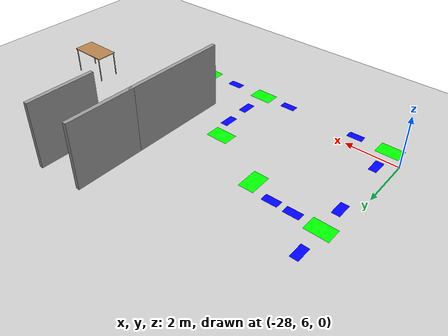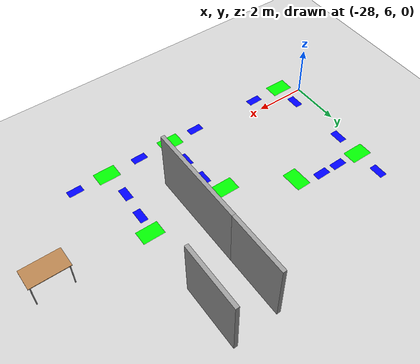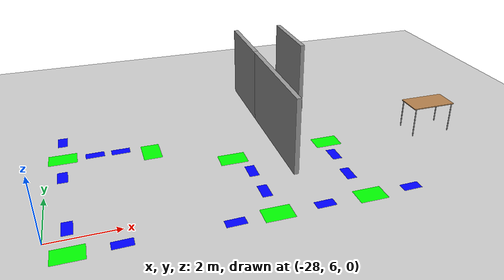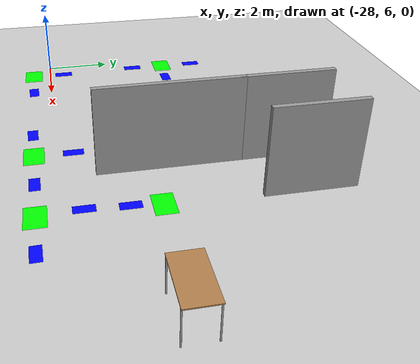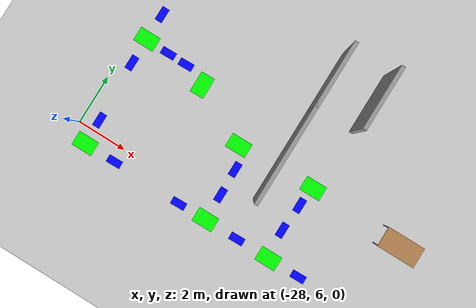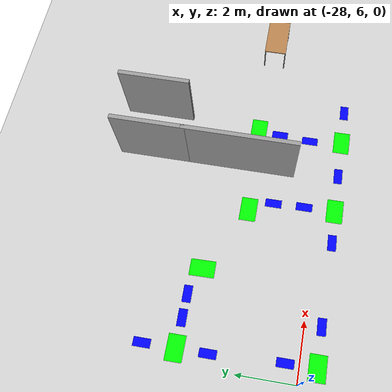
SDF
<sdf version="1.6">
 <world name="default">
  <model name="ground_plane">
   <pose>0 0 0.001 0 -0 0</pose>
   <static>1</static>
   <link name="link">
    <collision name="collision">
     <geometry><plane><normal>0 0 1</normal><size>100 100</size></plane></geometry>
     <surface><friction><ode><mu>100</mu><mu2>50</mu2></ode></friction></surface>
    </collision>
    <visual name="visual">
     <cast_shadows>0</cast_shadows>
     <geometry><plane><normal>0 0 1</normal><size>100 100</size></plane></geometry>
     <material>
      <script><uri>file://media/materials/scripts/gazebo.material</uri><name>Gazebo/Grey</name></script>
     </material>
    </visual>
   </link>
  </model>
  <model name="table_2">
   <static>1</static>
   <link name="link">
    <collision name="surface">
     <pose>0 0 1 0 -0 0</pose>
     <geometry><box><size>1.5 0.8 0.03</size></box></geometry>
     <surface><friction><ode><mu>0.6</mu><mu2>0.6</mu2></ode></friction></surface>
    </collision>
    <visual name="visual1">
     <pose>0 0 1 0 -0 0</pose>
     <geometry><box><size>1.5 0.8 0.03</size></box></geometry>
     <material>
      <script><uri>file://media/materials/scripts/gazebo.material</uri><name>Gazebo/Wood</name></script>
     </material>
    </visual>
    <collision name="front_left_leg">
     <pose>0.68 0.38 0.5 0 -0 0</pose>
     <geometry><cylinder><radius>0.02</radius><length>1</length></cylinder></geometry>
    </collision>
    <visual name="front_left_leg">
     <pose>0.68 0.38 0.5 0 -0 0</pose>
     <geometry><cylinder><radius>0.02</radius><length>1</length></cylinder></geometry>
     <material>
      <script><uri>file://media/materials/scripts/gazebo.material</uri><name>Gazebo/Grey</name></script>
     </material>
    </visual>
    <collision name="front_right_leg">
     <pose>0.68 -0.38 0.5 0 -0 0</pose>
     <geometry><cylinder><radius>0.02</radius><length>1</length></cylinder></geometry>
    </collision>
    <visual name="front_right_leg">
     <pose>0.68 -0.38 0.5 0 -0 0</pose>
     <geometry><cylinder><radius>0.02</radius><length>1</length></cylinder></geometry>
     <material>
      <script><uri>file://media/materials/scripts/gazebo.material</uri><name>Gazebo/Grey</name></script>
     </material>
    </visual>
    <collision name="back_right_leg">
     <pose>-0.68 -0.38 0.5 0 -0 0</pose>
     <geometry><cylinder><radius>0.02</radius><length>1</length></cylinder></geometry>
    </collision>
    <visual name="back_right_leg">
     <pose>-0.68 -0.38 0.5 0 -0 0</pose>
     <geometry><cylinder><radius>0.02</radius><length>1</length></cylinder></geometry>
     <material>
      <script><uri>file://media/materials/scripts/gazebo.material</uri><name>Gazebo/Grey</name></script>
     </material>
    </visual>
    <collision name="back_left_leg">
     <pose>-0.68 0.38 0.5 0 -0 0</pose>
     <geometry><cylinder><radius>0.02</radius><length>1</length></cylinder></geometry>
    </collision>
    <visual name="back_left_leg">
     <pose>-0.68 0.38 0.5 0 -0 0</pose>
     <geometry><cylinder><radius>0.02</radius><length>1</length></cylinder></geometry>
     <material>
      <script><uri>file://media/materials/scripts/gazebo.material</uri><name>Gazebo/Grey</name></script>
     </material>
    </visual>
   </link>
   <pose>-15.5399 8.3596 0.001 0 -0 0</pose>
  </model>
  <model name="corridor_1">
   <link name="link">
    <pose>0 0 0.001 0 -0 0</pose>
    <inertial>
     <mass>0.0352517</mass>
     <inertia>
      <ixx>0.00099707</ixx>
      <ixy>0</ixy>
      <ixz>0</ixz>
      <iyy>0.00220147</iyy>
      <iyz>0</iyz>
      <izz>0.0031692</izz>
     </inertia>
     <pose>0 0 0.001 0 -0 0</pose>
    </inertial>
    <visual name="visual">
     <geometry><box><size>0.862743 0.578289 1e-06</size></box></geometry>
     <material>
      <script><name>Gazebo/Grey</name><uri>file://media/materials/scripts/gazebo.material</uri></script>
      <ambient>0 1 0 1</ambient>
      <diffuse>0 1 0 1</diffuse>
      <specular>0 1 0 1</specular>
      <emissive>0 1 0 1</emissive>
      <shader type="vertex"><normal_map>__default__</normal_map></shader>
     </material>
     <pose>0 0 0.001 0 -0 0</pose>
    </visual>
    <collision name="collision">
     <pose>0 0 0.001 0 -0 0</pose>
     <geometry><box><size>0.862743 0.578289 0.000477</size></box></geometry>
     <surface>
      <friction>
       <ode><mu>1</mu><mu2>1</mu2><fdir1>0 0 0</fdir1><slip1>0</slip1><slip2>0</slip2></ode>
       <torsional>
        <coefficient>1</coefficient>
        <patch_radius>0</patch_radius>
        <surface_radius>0</surface_radius>
        <use_patch_radius>1</use_patch_radius>
        <ode><slip>0</slip></ode>
       </torsional>
      </friction>
      <bounce><restitution_coefficient>0</restitution_coefficient><threshold>1e+06</threshold></bounce>
      <contact>
       <collide_without_contact>0</collide_without_contact>
       <collide_without_contact_bitmask>1</collide_without_contact_bitmask>
       <collide_bitmask>1</collide_bitmask>
       <ode>
        <soft_cfm>0</soft_cfm>
        <soft_erp>0.2</soft_erp>
        <kp>1e+13</kp>
        <kd>1</kd>
        <max_vel>0.01</max_vel>
        <min_depth>0</min_depth>
       </ode>
       <bullet>
        <split_impulse>1</split_impulse>
        <split_impulse_penetration_threshold>-0.01</split_impulse_penetration_threshold>
        <soft_cfm>0</soft_cfm>
        <soft_erp>0.2</soft_erp>
        <kp>1e+13</kp>
        <kd>1</kd>
       </bullet>
      </contact>
     </surface>
    </collision>
   </link>
   <static>1</static>
   <pose>-27.5054 9.99894 0 0 -0 0</pose>
  </model>
  <model name="corridor_2">
   <link name="link">
    <pose>0 0 0.001 0 -0 0</pose>
    <inertial>
     <mass>0.0352517</mass>
     <inertia>
      <ixx>0.00099707</ixx>
      <ixy>0</ixy>
      <ixz>0</ixz>
      <iyy>0.00220147</iyy>
      <iyz>0</iyz>
      <izz>0.0031692</izz>
     </inertia>
     <pose>0 0 0.001 0 -0 0</pose>
    </inertial>
    <visual name="visual">
     <geometry><box><size>0.862743 0.578289 1e-06</size></box></geometry>
     <material>
      <script><name>Gazebo/Grey</name><uri>file://media/materials/scripts/gazebo.material</uri></script>
      <ambient>0 1 0 1</ambient>
      <diffuse>0 1 0 1</diffuse>
      <specular>0 1 0 1</specular>
      <emissive>0 1 0 1</emissive>
      <shader type="vertex"><normal_map>__default__</normal_map></shader>
     </material>
     <pose>0 0 0.001 0 -0 0</pose>
    </visual>
    <collision name="collision">
     <pose>0 0 0.001 0 -0 0</pose>
     <geometry><box><size>0.862743 0.578289 0.000477</size></box></geometry>
     <surface>
      <friction>
       <ode><mu>1</mu><mu2>1</mu2><fdir1>0 0 0</fdir1><slip1>0</slip1><slip2>0</slip2></ode>
       <torsional>
        <coefficient>1</coefficient>
        <patch_radius>0</patch_radius>
        <surface_radius>0</surface_radius>
        <use_patch_radius>1</use_patch_radius>
        <ode><slip>0</slip></ode>
       </torsional>
      </friction>
      <bounce><restitution_coefficient>0</restitution_coefficient><threshold>1e+06</threshold></bounce>
      <contact>
       <collide_without_contact>0</collide_without_contact>
       <collide_without_contact_bitmask>1</collide_without_contact_bitmask>
       <collide_bitmask>1</collide_bitmask>
       <ode>
        <soft_cfm>0</soft_cfm>
        <soft_erp>0.2</soft_erp>
        <kp>1e+13</kp>
        <kd>1</kd>
        <max_vel>0.01</max_vel>
        <min_depth>0</min_depth>
       </ode>
       <bullet>
        <split_impulse>1</split_impulse>
        <split_impulse_penetration_threshold>-0.01</split_impulse_penetration_threshold>
        <soft_cfm>0</soft_cfm>
        <soft_erp>0.2</soft_erp>
        <kp>1e+13</kp>
        <kd>1</kd>
       </bullet>
      </contact>
     </surface>
    </collision>
   </link>
   <static>1</static>
   <pose>-27.3839 5.42148 0 0 -0 0</pose>
  </model>
  <model name="corridor_20">
   <link name="link">
    <pose>0 0 0.001 0 -0 0</pose>
    <inertial>
     <mass>0.0352517</mass>
     <inertia>
      <ixx>0.00099707</ixx>
      <ixy>0</ixy>
      <ixz>0</ixz>
      <iyy>0.00220147</iyy>
      <iyz>0</iyz>
      <izz>0.0031692</izz>
     </inertia>
     <pose>0 0 0.001 0 -0 0</pose>
    </inertial>
    <visual name="visual">
     <geometry><box><size>0.862743 0.578289 1e-06</size></box></geometry>
     <material>
      <script><name>Gazebo/Grey</name><uri>file://media/materials/scripts/gazebo.material</uri></script>
      <ambient>0 1 0 1</ambient>
      <diffuse>0 1 0 1</diffuse>
      <specular>0 1 0 1</specular>
      <emissive>0 1 0 1</emissive>
      <shader type="vertex"><normal_map>__default__</normal_map></shader>
     </material>
     <pose>0 0 0.001 0 -0 0</pose>
    </visual>
    <collision name="collision">
     <pose>0 0 0.001 0 -0 0</pose>
     <geometry><box><size>0.862743 0.578289 0.000477</size></box></geometry>
     <surface>
      <friction>
       <ode><mu>1</mu><mu2>1</mu2><fdir1>0 0 0</fdir1><slip1>0</slip1><slip2>0</slip2></ode>
       <torsional>
        <coefficient>1</coefficient>
        <patch_radius>0</patch_radius>
        <surface_radius>0</surface_radius>
        <use_patch_radius>1</use_patch_radius>
        <ode><slip>0</slip></ode>
       </torsional>
      </friction>
      <bounce><restitution_coefficient>0</restitution_coefficient><threshold>1e+06</threshold></bounce>
      <contact>
       <collide_without_contact>0</collide_without_contact>
       <collide_without_contact_bitmask>1</collide_without_contact_bitmask>
       <collide_bitmask>1</collide_bitmask>
       <ode>
        <soft_cfm>0</soft_cfm>
        <soft_erp>0.2</soft_erp>
        <kp>1e+13</kp>
        <kd>1</kd>
        <max_vel>0.01</max_vel>
        <min_depth>0</min_depth>
       </ode>
       <bullet>
        <split_impulse>1</split_impulse>
        <split_impulse_penetration_threshold>-0.01</split_impulse_penetration_threshold>
        <soft_cfm>0</soft_cfm>
        <soft_erp>0.2</soft_erp>
        <kp>1e+13</kp>
        <kd>1</kd>
       </bullet>
      </contact>
     </surface>
    </collision>
   </link>
   <static>1</static>
   <pose>-19.241 5.38665 0 0 -0 0</pose>
  </model>
  <model name="corridor_21">
   <link name="link">
    <pose>0 0 0.001 0 -0 0</pose>
    <inertial>
     <mass>0.0352517</mass>
     <inertia>
      <ixx>0.00099707</ixx>
      <ixy>0</ixy>
      <ixz>0</ixz>
      <iyy>0.00220147</iyy>
      <iyz>0</iyz>
      <izz>0.0031692</izz>
     </inertia>
     <pose>0 0 0.001 0 -0 0</pose>
    </inertial>
    <visual name="visual">
     <geometry><box><size>0.862743 0.578289 1e-06</size></box></geometry>
     <material>
      <script><name>Gazebo/Grey</name><uri>file://media/materials/scripts/gazebo.material</uri></script>
      <ambient>0 1 0 1</ambient>
      <diffuse>0 1 0 1</diffuse>
      <specular>0 1 0 1</specular>
      <emissive>0 1 0 1</emissive>
      <shader type="vertex"><normal_map>__default__</normal_map></shader>
     </material>
     <pose>0 0 0.001 0 -0 0</pose>
    </visual>
    <collision name="collision">
     <pose>0 0 0.001 0 -0 0</pose>
     <geometry><box><size>0.862743 0.578289 0.000477</size></box></geometry>
     <surface>
      <friction>
       <ode><mu>1</mu><mu2>1</mu2><fdir1>0 0 0</fdir1><slip1>0</slip1><slip2>0</slip2></ode>
       <torsional>
        <coefficient>1</coefficient>
        <patch_radius>0</patch_radius>
        <surface_radius>0</surface_radius>
        <use_patch_radius>1</use_patch_radius>
        <ode><slip>0</slip></ode>
       </torsional>
      </friction>
      <bounce><restitution_coefficient>0</restitution_coefficient><threshold>1e+06</threshold></bounce>
      <contact>
       <collide_without_contact>0</collide_without_contact>
       <collide_without_contact_bitmask>1</collide_without_contact_bitmask>
       <collide_bitmask>1</collide_bitmask>
       <ode>
        <soft_cfm>0</soft_cfm>
        <soft_erp>0.2</soft_erp>
        <kp>1e+13</kp>
        <kd>1</kd>
        <max_vel>0.01</max_vel>
        <min_depth>0</min_depth>
       </ode>
       <bullet>
        <split_impulse>1</split_impulse>
        <split_impulse_penetration_threshold>-0.01</split_impulse_penetration_threshold>
        <soft_cfm>0</soft_cfm>
        <soft_erp>0.2</soft_erp>
        <kp>1e+13</kp>
        <kd>1</kd>
       </bullet>
      </contact>
     </surface>
    </collision>
   </link>
   <static>1</static>
   <pose>-22.0183 5.38077 0 0 -0 0</pose>
  </model>
  <model name="Se1_cut">
   <pose>3.62364 13.9276 0 0 -0 0</pose>
   <link name="Wall_20">
    <collision name="Wall_20_Collision">
     <geometry><box><size>2.57604 0.15 2.5</size></box></geometry>
     <pose>0 0 1.25 0 -0 0</pose>
    </collision>
    <visual name="Wall_20_Visual">
     <pose>0 0 1.25 0 -0 0</pose>
     <geometry><box><size>2.57604 0.15 2.5</size></box></geometry>
     <material>
      <script><uri>file://media/materials/scripts/gazebo.material</uri><name>Gazebo/Grey</name></script>
      <ambient>1 1 1 1</ambient>
     </material>
    </visual>
    <pose>-24.4704 -1.79415 0 0 0 -1.5708</pose>
   </link>
   <link name="Wall_23">
    <collision name="Wall_23_Collision">
     <geometry><box><size>2.5 0.15 2.5</size></box></geometry>
     <pose>0 0 1.25 0 -0 0</pose>
    </collision>
    <visual name="Wall_23_Visual">
     <pose>0 0 1.25 0 -0 0</pose>
     <geometry><box><size>2.5 0.15 2.5</size></box></geometry>
     <material>
      <script><uri>file://media/materials/scripts/gazebo.material</uri><name>Gazebo/Grey</name></script>
      <ambient>1 1 1 1</ambient>
     </material>
    </visual>
    <pose>-22.711 -1.63352 0 0 0 -1.5708</pose>
   </link>
   <link name="Wall_87">
    <collision name="Wall_87_Collision">
     <geometry><box><size>4 0.15 2.5</size></box></geometry>
     <pose>0 0 1.25 0 -0 0</pose>
    </collision>
    <visual name="Wall_87_Visual">
     <pose>0 0 1.25 0 -0 0</pose>
     <geometry><box><size>4 0.15 2.5</size></box></geometry>
     <material>
      <script><uri>file://media/materials/scripts/gazebo.material</uri><name>Gazebo/Grey</name></script>
      <ambient>1 1 1 1</ambient>
     </material>
    </visual>
    <pose>-24.4704 -4.93217 0 0 0 -1.5708</pose>
   </link>
   <static>1</static>
  </model>
  <model name="intersectionXS_2">
   <link name="link">
    <pose>0 0 0.001 0 -0 0</pose>
    <inertial>
     <mass>0.0122177</mass>
     <inertia>
      <ixx>0.000345567</ixx>
      <ixy>0</ixy>
      <ixz>0</ixz>
      <iyy>9.61239e-05</iyy>
      <iyz>0</iyz>
      <izz>0.000431523</izz>
     </inertia>
    </inertial>
    <visual name="visual">
     <geometry><box><size>0.299013 0.578289 1e-06</size></box></geometry>
     <material>
      <script><name>Gazebo/Grey</name><uri>file://media/materials/scripts/gazebo.material</uri></script>
      <ambient>0 0 1 1</ambient>
      <diffuse>0 0 1 1</diffuse>
      <specular>0 0 1 1</specular>
      <emissive>0 0 1 1</emissive>
      <shader type="vertex"><normal_map>__default__</normal_map></shader>
     </material>
     <pose>0 0 0.001 0 -0 0</pose>
    </visual>
    <collision name="collision">
     <pose>0 0 0.001 0 -0 0</pose>
     <geometry><box><size>0.299013 0.578289 0.000477</size></box></geometry>
     <surface>
      <friction>
       <ode><mu>1</mu><mu2>1</mu2><fdir1>0 0 0</fdir1><slip1>0</slip1><slip2>0</slip2></ode>
       <torsional>
        <coefficient>1</coefficient>
        <patch_radius>0</patch_radius>
        <surface_radius>0</surface_radius>
        <use_patch_radius>1</use_patch_radius>
        <ode><slip>0</slip></ode>
       </torsional>
      </friction>
      <bounce><restitution_coefficient>0</restitution_coefficient><threshold>1e+06</threshold></bounce>
      <contact>
       <collide_without_contact>0</collide_without_contact>
       <collide_without_contact_bitmask>1</collide_without_contact_bitmask>
       <collide_bitmask>1</collide_bitmask>
       <ode>
        <soft_cfm>0</soft_cfm>
        <soft_erp>0.2</soft_erp>
        <kp>1e+13</kp>
        <kd>1</kd>
        <max_vel>0.01</max_vel>
        <min_depth>0</min_depth>
       </ode>
       <bullet>
        <split_impulse>1</split_impulse>
        <split_impulse_penetration_threshold>-0.01</split_impulse_penetration_threshold>
        <soft_cfm>0</soft_cfm>
        <soft_erp>0.2</soft_erp>
        <kp>1e+13</kp>
        <kd>1</kd>
       </bullet>
      </contact>
     </surface>
    </collision>
   </link>
   <static>1</static>
   <pose>-27.5116 11.099 0 0 -0 0</pose>
  </model>
  <model name="intersectionXS_3">
   <link name="link">
    <pose>0 0 0.001 0 -0 0</pose>
    <inertial>
     <mass>0.0122177</mass>
     <inertia>
      <ixx>0.000345567</ixx>
      <ixy>0</ixy>
      <ixz>0</ixz>
      <iyy>9.61239e-05</iyy>
      <iyz>0</iyz>
      <izz>0.000431523</izz>
     </inertia>
    </inertial>
    <visual name="visual">
     <geometry><box><size>0.299013 0.578289 1e-06</size></box></geometry>
     <material>
      <script><name>Gazebo/Grey</name><uri>file://media/materials/scripts/gazebo.material</uri></script>
      <ambient>0 0 1 1</ambient>
      <diffuse>0 0 1 1</diffuse>
      <specular>0 0 1 1</specular>
      <emissive>0 0 1 1</emissive>
      <shader type="vertex"><normal_map>__default__</normal_map></shader>
     </material>
     <pose>0 0 0.001 0 -0 0</pose>
    </visual>
    <collision name="collision">
     <pose>0 0 0.001 0 -0 0</pose>
     <geometry><box><size>0.299013 0.578289 0.000477</size></box></geometry>
     <surface>
      <friction>
       <ode><mu>1</mu><mu2>1</mu2><fdir1>0 0 0</fdir1><slip1>0</slip1><slip2>0</slip2></ode>
       <torsional>
        <coefficient>1</coefficient>
        <patch_radius>0</patch_radius>
        <surface_radius>0</surface_radius>
        <use_patch_radius>1</use_patch_radius>
        <ode><slip>0</slip></ode>
       </torsional>
      </friction>
      <bounce><restitution_coefficient>0</restitution_coefficient><threshold>1e+06</threshold></bounce>
      <contact>
       <collide_without_contact>0</collide_without_contact>
       <collide_without_contact_bitmask>1</collide_without_contact_bitmask>
       <collide_bitmask>1</collide_bitmask>
       <ode>
        <soft_cfm>0</soft_cfm>
        <soft_erp>0.2</soft_erp>
        <kp>1e+13</kp>
        <kd>1</kd>
        <max_vel>0.01</max_vel>
        <min_depth>0</min_depth>
       </ode>
       <bullet>
        <split_impulse>1</split_impulse>
        <split_impulse_penetration_threshold>-0.01</split_impulse_penetration_threshold>
        <soft_cfm>0</soft_cfm>
        <soft_erp>0.2</soft_erp>
        <kp>1e+13</kp>
        <kd>1</kd>
       </bullet>
      </contact>
     </surface>
    </collision>
   </link>
   <static>1</static>
   <pose>-27.511 8.93568 0 0 -0 0</pose>
  </model>
  <model name="intersectionXS_4">
   <link name="link">
    <pose>0 0 0.001 0 -0 0</pose>
    <inertial>
     <mass>0.0122177</mass>
     <inertia>
      <ixx>0.000345567</ixx>
      <ixy>0</ixy>
      <ixz>0</ixz>
      <iyy>9.61239e-05</iyy>
      <iyz>0</iyz>
      <izz>0.000431523</izz>
     </inertia>
    </inertial>
    <visual name="visual">
     <geometry><box><size>0.299013 0.578289 1e-06</size></box></geometry>
     <material>
      <script><name>Gazebo/Grey</name><uri>file://media/materials/scripts/gazebo.material</uri></script>
      <ambient>0 0 1 1</ambient>
      <diffuse>0 0 1 1</diffuse>
      <specular>0 0 1 1</specular>
      <emissive>0 0 1 1</emissive>
      <shader type="vertex"><normal_map>__default__</normal_map></shader>
     </material>
     <pose>0 0 0.001 0 -0 0</pose>
    </visual>
    <collision name="collision">
     <pose>0 0 0.001 0 -0 0</pose>
     <geometry><box><size>0.299013 0.578289 0.000477</size></box></geometry>
     <surface>
      <friction>
       <ode><mu>1</mu><mu2>1</mu2><fdir1>0 0 0</fdir1><slip1>0</slip1><slip2>0</slip2></ode>
       <torsional>
        <coefficient>1</coefficient>
        <patch_radius>0</patch_radius>
        <surface_radius>0</surface_radius>
        <use_patch_radius>1</use_patch_radius>
        <ode><slip>0</slip></ode>
       </torsional>
      </friction>
      <bounce><restitution_coefficient>0</restitution_coefficient><threshold>1e+06</threshold></bounce>
      <contact>
       <collide_without_contact>0</collide_without_contact>
       <collide_without_contact_bitmask>1</collide_without_contact_bitmask>
       <collide_bitmask>1</collide_bitmask>
       <ode>
        <soft_cfm>0</soft_cfm>
        <soft_erp>0.2</soft_erp>
        <kp>1e+13</kp>
        <kd>1</kd>
        <max_vel>0.01</max_vel>
        <min_depth>0</min_depth>
       </ode>
       <bullet>
        <split_impulse>1</split_impulse>
        <split_impulse_penetration_threshold>-0.01</split_impulse_penetration_threshold>
        <soft_cfm>0</soft_cfm>
        <soft_erp>0.2</soft_erp>
        <kp>1e+13</kp>
        <kd>1</kd>
       </bullet>
      </contact>
     </surface>
    </collision>
   </link>
   <static>1</static>
   <pose>-27.3955 6.45309 0 0 -0 0</pose>
  </model>
  <model name="intersectionXS_9">
   <link name="link">
    <pose>0 0 0.001 0 -0 0</pose>
    <inertial>
     <mass>0.0122177</mass>
     <inertia>
      <ixx>0.000345567</ixx>
      <ixy>0</ixy>
      <ixz>0</ixz>
      <iyy>9.61239e-05</iyy>
      <iyz>0</iyz>
      <izz>0.000431523</izz>
     </inertia>
    </inertial>
    <visual name="visual">
     <geometry><box><size>0.299013 0.578289 1e-06</size></box></geometry>
     <material>
      <script><name>Gazebo/Grey</name><uri>file://media/materials/scripts/gazebo.material</uri></script>
      <ambient>0 0 1 1</ambient>
      <diffuse>0 0 1 1</diffuse>
      <specular>0 0 1 1</specular>
      <emissive>0 0 1 1</emissive>
      <shader type="vertex"><normal_map>__default__</normal_map></shader>
     </material>
     <pose>0 0 0.001 0 -0 0</pose>
    </visual>
    <collision name="collision">
     <pose>0 0 0.001 0 -0 0</pose>
     <geometry><box><size>0.299013 0.578289 0.000477</size></box></geometry>
     <surface>
      <friction>
       <ode><mu>1</mu><mu2>1</mu2><fdir1>0 0 0</fdir1><slip1>0</slip1><slip2>0</slip2></ode>
       <torsional>
        <coefficient>1</coefficient>
        <patch_radius>0</patch_radius>
        <surface_radius>0</surface_radius>
        <use_patch_radius>1</use_patch_radius>
        <ode><slip>0</slip></ode>
       </torsional>
      </friction>
      <bounce><restitution_coefficient>0</restitution_coefficient><threshold>1e+06</threshold></bounce>
      <contact>
       <collide_without_contact>0</collide_without_contact>
       <collide_without_contact_bitmask>1</collide_without_contact_bitmask>
       <collide_bitmask>1</collide_bitmask>
       <ode>
        <soft_cfm>0</soft_cfm>
        <soft_erp>0.2</soft_erp>
        <kp>1e+13</kp>
        <kd>1</kd>
        <max_vel>0.01</max_vel>
        <min_depth>0</min_depth>
       </ode>
       <bullet>
        <split_impulse>1</split_impulse>
        <split_impulse_penetration_threshold>-0.01</split_impulse_penetration_threshold>
        <soft_cfm>0</soft_cfm>
        <soft_erp>0.2</soft_erp>
        <kp>1e+13</kp>
        <kd>1</kd>
       </bullet>
      </contact>
     </surface>
    </collision>
   </link>
   <static>1</static>
   <pose>-22.0236 6.47064 0 0 -0 0</pose>
  </model>
  <model name="intersectionXS_10">
   <link name="link">
    <pose>0 0 0.001 0 -0 0</pose>
    <inertial>
     <mass>0.0122177</mass>
     <inertia>
      <ixx>0.000345567</ixx>
      <ixy>0</ixy>
      <ixz>0</ixz>
      <iyy>9.61239e-05</iyy>
      <iyz>0</iyz>
      <izz>0.000431523</izz>
     </inertia>
    </inertial>
    <visual name="visual">
     <geometry><box><size>0.299013 0.578289 1e-06</size></box></geometry>
     <material>
      <script><name>Gazebo/Grey</name><uri>file://media/materials/scripts/gazebo.material</uri></script>
      <ambient>0 0 1 1</ambient>
      <diffuse>0 0 1 1</diffuse>
      <specular>0 0 1 1</specular>
      <emissive>0 0 1 1</emissive>
      <shader type="vertex"><normal_map>__default__</normal_map></shader>
     </material>
     <pose>0 0 0.001 0 -0 0</pose>
    </visual>
    <collision name="collision">
     <pose>0 0 0.001 0 -0 0</pose>
     <geometry><box><size>0.299013 0.578289 0.000477</size></box></geometry>
     <surface>
      <friction>
       <ode><mu>1</mu><mu2>1</mu2><fdir1>0 0 0</fdir1><slip1>0</slip1><slip2>0</slip2></ode>
       <torsional>
        <coefficient>1</coefficient>
        <patch_radius>0</patch_radius>
        <surface_radius>0</surface_radius>
        <use_patch_radius>1</use_patch_radius>
        <ode><slip>0</slip></ode>
       </torsional>
      </friction>
      <bounce><restitution_coefficient>0</restitution_coefficient><threshold>1e+06</threshold></bounce>
      <contact>
       <collide_without_contact>0</collide_without_contact>
       <collide_without_contact_bitmask>1</collide_without_contact_bitmask>
       <collide_bitmask>1</collide_bitmask>
       <ode>
        <soft_cfm>0</soft_cfm>
        <soft_erp>0.2</soft_erp>
        <kp>1e+13</kp>
        <kd>1</kd>
        <max_vel>0.01</max_vel>
        <min_depth>0</min_depth>
       </ode>
       <bullet>
        <split_impulse>1</split_impulse>
        <split_impulse_penetration_threshold>-0.01</split_impulse_penetration_threshold>
        <soft_cfm>0</soft_cfm>
        <soft_erp>0.2</soft_erp>
        <kp>1e+13</kp>
        <kd>1</kd>
       </bullet>
      </contact>
     </surface>
    </collision>
   </link>
   <static>1</static>
   <pose>-22.0603 7.56999 0 0 -0 0</pose>
  </model>
  <model name="intersectionXS_11">
   <link name="link">
    <pose>0 0 0.001 0 -0 0</pose>
    <inertial>
     <mass>0.0122177</mass>
     <inertia>
      <ixx>0.000345567</ixx>
      <ixy>0</ixy>
      <ixz>0</ixz>
      <iyy>9.61239e-05</iyy>
      <iyz>0</iyz>
      <izz>0.000431523</izz>
     </inertia>
    </inertial>
    <visual name="visual">
     <geometry><box><size>0.299013 0.578289 1e-06</size></box></geometry>
     <material>
      <script><name>Gazebo/Grey</name><uri>file://media/materials/scripts/gazebo.material</uri></script>
      <ambient>0 0 1 1</ambient>
      <diffuse>0 0 1 1</diffuse>
      <specular>0 0 1 1</specular>
      <emissive>0 0 1 1</emissive>
      <shader type="vertex"><normal_map>__default__</normal_map></shader>
     </material>
     <pose>0 0 0.001 0 -0 0</pose>
    </visual>
    <collision name="collision">
     <pose>0 0 0.001 0 -0 0</pose>
     <geometry><box><size>0.299013 0.578289 0.000477</size></box></geometry>
     <surface>
      <friction>
       <ode><mu>1</mu><mu2>1</mu2><fdir1>0 0 0</fdir1><slip1>0</slip1><slip2>0</slip2></ode>
       <torsional>
        <coefficient>1</coefficient>
        <patch_radius>0</patch_radius>
        <surface_radius>0</surface_radius>
        <use_patch_radius>1</use_patch_radius>
        <ode><slip>0</slip></ode>
       </torsional>
      </friction>
      <bounce><restitution_coefficient>0</restitution_coefficient><threshold>1e+06</threshold></bounce>
      <contact>
       <collide_without_contact>0</collide_without_contact>
       <collide_without_contact_bitmask>1</collide_without_contact_bitmask>
       <collide_bitmask>1</collide_bitmask>
       <ode>
        <soft_cfm>0</soft_cfm>
        <soft_erp>0.2</soft_erp>
        <kp>1e+13</kp>
        <kd>1</kd>
        <max_vel>0.01</max_vel>
        <min_depth>0</min_depth>
       </ode>
       <bullet>
        <split_impulse>1</split_impulse>
        <split_impulse_penetration_threshold>-0.01</split_impulse_penetration_threshold>
        <soft_cfm>0</soft_cfm>
        <soft_erp>0.2</soft_erp>
        <kp>1e+13</kp>
        <kd>1</kd>
       </bullet>
      </contact>
     </surface>
    </collision>
   </link>
   <static>1</static>
   <pose>-19.3524 6.56449 0 0 -0 0</pose>
  </model>
  <model name="intersectionXS_12">
   <link name="link">
    <pose>0 0 0.001 0 -0 0</pose>
    <inertial>
     <mass>0.0122177</mass>
     <inertia>
      <ixx>0.000345567</ixx>
      <ixy>0</ixy>
      <ixz>0</ixz>
      <iyy>9.61239e-05</iyy>
      <iyz>0</iyz>
      <izz>0.000431523</izz>
     </inertia>
    </inertial>
    <visual name="visual">
     <geometry><box><size>0.299013 0.578289 1e-06</size></box></geometry>
     <material>
      <script><name>Gazebo/Grey</name><uri>file://media/materials/scripts/gazebo.material</uri></script>
      <ambient>0 0 1 1</ambient>
      <diffuse>0 0 1 1</diffuse>
      <specular>0 0 1 1</specular>
      <emissive>0 0 1 1</emissive>
      <shader type="vertex"><normal_map>__default__</normal_map></shader>
     </material>
     <pose>0 0 0.001 0 -0 0</pose>
    </visual>
    <collision name="collision">
     <pose>0 0 0.001 0 -0 0</pose>
     <geometry><box><size>0.299013 0.578289 0.000477</size></box></geometry>
     <surface>
      <friction>
       <ode><mu>1</mu><mu2>1</mu2><fdir1>0 0 0</fdir1><slip1>0</slip1><slip2>0</slip2></ode>
       <torsional>
        <coefficient>1</coefficient>
        <patch_radius>0</patch_radius>
        <surface_radius>0</surface_radius>
        <use_patch_radius>1</use_patch_radius>
        <ode><slip>0</slip></ode>
       </torsional>
      </friction>
      <bounce><restitution_coefficient>0</restitution_coefficient><threshold>1e+06</threshold></bounce>
      <contact>
       <collide_without_contact>0</collide_without_contact>
       <collide_without_contact_bitmask>1</collide_without_contact_bitmask>
       <collide_bitmask>1</collide_bitmask>
       <ode>
        <soft_cfm>0</soft_cfm>
        <soft_erp>0.2</soft_erp>
        <kp>1e+13</kp>
        <kd>1</kd>
        <max_vel>0.01</max_vel>
        <min_depth>0</min_depth>
       </ode>
       <bullet>
        <split_impulse>1</split_impulse>
        <split_impulse_penetration_threshold>-0.01</split_impulse_penetration_threshold>
        <soft_cfm>0</soft_cfm>
        <soft_erp>0.2</soft_erp>
        <kp>1e+13</kp>
        <kd>1</kd>
       </bullet>
      </contact>
     </surface>
    </collision>
   </link>
   <static>1</static>
   <pose>-19.2833 7.70222 0 0 -0 0</pose>
  </model>
  <model name="intersectionXS_15_clone_1">
   <link name="link">
    <pose>0 0 0.001 0 -0 0</pose>
    <inertial>
     <mass>0.0122177</mass>
     <inertia>
      <ixx>0.000345567</ixx>
      <ixy>0</ixy>
      <ixz>0</ixz>
      <iyy>9.61239e-05</iyy>
      <iyz>0</iyz>
      <izz>0.000431523</izz>
     </inertia>
    </inertial>
    <visual name="visual">
     <geometry><box><size>0.299013 0.578289 1e-06</size></box></geometry>
     <material>
      <script><name>Gazebo/Grey</name><uri>file://media/materials/scripts/gazebo.material</uri></script>
      <ambient>0 0 1 1</ambient>
      <diffuse>0 0 1 1</diffuse>
      <specular>0 0 1 1</specular>
      <emissive>0 0 1 1</emissive>
      <shader type="vertex"><normal_map>__default__</normal_map></shader>
     </material>
     <pose>0 0 0.001 0 -0 0</pose>
    </visual>
    <collision name="collision">
     <pose>0 0 0.001 0 -0 0</pose>
     <geometry><box><size>0.299013 0.578289 0.000477</size></box></geometry>
     <surface>
      <friction>
       <ode><mu>1</mu><mu2>1</mu2><fdir1>0 0 0</fdir1><slip1>0</slip1><slip2>0</slip2></ode>
       <torsional>
        <coefficient>1</coefficient>
        <patch_radius>0</patch_radius>
        <surface_radius>0</surface_radius>
        <use_patch_radius>1</use_patch_radius>
        <ode><slip>0</slip></ode>
       </torsional>
      </friction>
      <bounce><restitution_coefficient>0</restitution_coefficient><threshold>1e+06</threshold></bounce>
      <contact>
       <collide_without_contact>0</collide_without_contact>
       <collide_without_contact_bitmask>1</collide_without_contact_bitmask>
       <collide_bitmask>1</collide_bitmask>
       <ode>
        <soft_cfm>0</soft_cfm>
        <soft_erp>0.2</soft_erp>
        <kp>1e+13</kp>
        <kd>1</kd>
        <max_vel>0.01</max_vel>
        <min_depth>0</min_depth>
       </ode>
       <bullet>
        <split_impulse>1</split_impulse>
        <split_impulse_penetration_threshold>-0.01</split_impulse_penetration_threshold>
        <soft_cfm>0</soft_cfm>
        <soft_erp>0.2</soft_erp>
        <kp>1e+13</kp>
        <kd>1</kd>
       </bullet>
      </contact>
     </surface>
    </collision>
   </link>
   <static>1</static>
   <pose>-26.5294 9.97118 0 0 -0 1.59325</pose>
  </model>
  <model name="intersectionXS_15_clone_2">
   <link name="link">
    <pose>0 0 0.001 0 -0 0</pose>
    <inertial>
     <mass>0.0122177</mass>
     <inertia>
      <ixx>0.000345567</ixx>
      <ixy>0</ixy>
      <ixz>0</ixz>
      <iyy>9.61239e-05</iyy>
      <iyz>0</iyz>
      <izz>0.000431523</izz>
     </inertia>
    </inertial>
    <visual name="visual">
     <geometry><box><size>0.299013 0.578289 1e-06</size></box></geometry>
     <material>
      <script><name>Gazebo/Grey</name><uri>file://media/materials/scripts/gazebo.material</uri></script>
      <ambient>0 0 1 1</ambient>
      <diffuse>0 0 1 1</diffuse>
      <specular>0 0 1 1</specular>
      <emissive>0 0 1 1</emissive>
      <shader type="vertex"><normal_map>__default__</normal_map></shader>
     </material>
     <pose>0 0 0.001 0 -0 0</pose>
    </visual>
    <collision name="collision">
     <pose>0 0 0.001 0 -0 0</pose>
     <geometry><box><size>0.299013 0.578289 0.000477</size></box></geometry>
     <surface>
      <friction>
       <ode><mu>1</mu><mu2>1</mu2><fdir1>0 0 0</fdir1><slip1>0</slip1><slip2>0</slip2></ode>
       <torsional>
        <coefficient>1</coefficient>
        <patch_radius>0</patch_radius>
        <surface_radius>0</surface_radius>
        <use_patch_radius>1</use_patch_radius>
        <ode><slip>0</slip></ode>
       </torsional>
      </friction>
      <bounce><restitution_coefficient>0</restitution_coefficient><threshold>1e+06</threshold></bounce>
      <contact>
       <collide_without_contact>0</collide_without_contact>
       <collide_without_contact_bitmask>1</collide_without_contact_bitmask>
       <collide_bitmask>1</collide_bitmask>
       <ode>
        <soft_cfm>0</soft_cfm>
        <soft_erp>0.2</soft_erp>
        <kp>1e+13</kp>
        <kd>1</kd>
        <max_vel>0.01</max_vel>
        <min_depth>0</min_depth>
       </ode>
       <bullet>
        <split_impulse>1</split_impulse>
        <split_impulse_penetration_threshold>-0.01</split_impulse_penetration_threshold>
        <soft_cfm>0</soft_cfm>
        <soft_erp>0.2</soft_erp>
        <kp>1e+13</kp>
        <kd>1</kd>
       </bullet>
      </contact>
     </surface>
    </collision>
   </link>
   <static>1</static>
   <pose>-25.7335 9.95934 0 0 -0 1.59325</pose>
  </model>
  <model name="corridor_1_clone">
   <link name="link">
    <pose>0 0 0.001 0 -0 0</pose>
    <inertial>
     <mass>0.0352517</mass>
     <inertia>
      <ixx>0.00099707</ixx>
      <ixy>0</ixy>
      <ixz>0</ixz>
      <iyy>0.00220147</iyy>
      <iyz>0</iyz>
      <izz>0.0031692</izz>
     </inertia>
     <pose>0 0 0.001 0 -0 0</pose>
    </inertial>
    <visual name="visual">
     <geometry><box><size>0.862743 0.578289 1e-06</size></box></geometry>
     <material>
      <script><name>Gazebo/Grey</name><uri>file://media/materials/scripts/gazebo.material</uri></script>
      <ambient>0 1 0 1</ambient>
      <diffuse>0 1 0 1</diffuse>
      <specular>0 1 0 1</specular>
      <emissive>0 1 0 1</emissive>
      <shader type="vertex"><normal_map>__default__</normal_map></shader>
     </material>
     <pose>0 0 0.001 0 -0 0</pose>
    </visual>
    <collision name="collision">
     <pose>0 0 0.001 0 -0 0</pose>
     <geometry><box><size>0.862743 0.578289 0.000477</size></box></geometry>
     <surface>
      <friction>
       <ode><mu>1</mu><mu2>1</mu2><fdir1>0 0 0</fdir1><slip1>0</slip1><slip2>0</slip2></ode>
       <torsional>
        <coefficient>1</coefficient>
        <patch_radius>0</patch_radius>
        <surface_radius>0</surface_radius>
        <use_patch_radius>1</use_patch_radius>
        <ode><slip>0</slip></ode>
       </torsional>
      </friction>
      <bounce><restitution_coefficient>0</restitution_coefficient><threshold>1e+06</threshold></bounce>
      <contact>
       <collide_without_contact>0</collide_without_contact>
       <collide_without_contact_bitmask>1</collide_without_contact_bitmask>
       <collide_bitmask>1</collide_bitmask>
       <ode>
        <soft_cfm>0</soft_cfm>
        <soft_erp>0.2</soft_erp>
        <kp>1e+13</kp>
        <kd>1</kd>
        <max_vel>0.01</max_vel>
        <min_depth>0</min_depth>
       </ode>
       <bullet>
        <split_impulse>1</split_impulse>
        <split_impulse_penetration_threshold>-0.01</split_impulse_penetration_threshold>
        <soft_cfm>0</soft_cfm>
        <soft_erp>0.2</soft_erp>
        <kp>1e+13</kp>
        <kd>1</kd>
       </bullet>
      </contact>
     </surface>
    </collision>
   </link>
   <static>1</static>
   <pose>-22.4256 8.41278 0 0 -0 0</pose>
  </model>
  <model name="corridor_1_clone_0">
   <link name="link">
    <pose>0 0 0.001 0 -0 0</pose>
    <inertial>
     <mass>0.0352517</mass>
     <inertia>
      <ixx>0.00099707</ixx>
      <ixy>0</ixy>
      <ixz>0</ixz>
      <iyy>0.00220147</iyy>
      <iyz>0</iyz>
      <izz>0.0031692</izz>
     </inertia>
     <pose>0 0 0.001 0 -0 0</pose>
    </inertial>
    <visual name="visual">
     <geometry><box><size>0.862743 0.578289 1e-06</size></box></geometry>
     <material>
      <script><name>Gazebo/Grey</name><uri>file://media/materials/scripts/gazebo.material</uri></script>
      <ambient>0 1 0 1</ambient>
      <diffuse>0 1 0 1</diffuse>
      <specular>0 1 0 1</specular>
      <emissive>0 1 0 1</emissive>
      <shader type="vertex"><normal_map>__default__</normal_map></shader>
     </material>
     <pose>0 0 0.001 0 -0 0</pose>
    </visual>
    <collision name="collision">
     <pose>0 0 0.001 0 -0 0</pose>
     <geometry><box><size>0.862743 0.578289 0.000477</size></box></geometry>
     <surface>
      <friction>
       <ode><mu>1</mu><mu2>1</mu2><fdir1>0 0 0</fdir1><slip1>0</slip1><slip2>0</slip2></ode>
       <torsional>
        <coefficient>1</coefficient>
        <patch_radius>0</patch_radius>
        <surface_radius>0</surface_radius>
        <use_patch_radius>1</use_patch_radius>
        <ode><slip>0</slip></ode>
       </torsional>
      </friction>
      <bounce><restitution_coefficient>0</restitution_coefficient><threshold>1e+06</threshold></bounce>
      <contact>
       <collide_without_contact>0</collide_without_contact>
       <collide_without_contact_bitmask>1</collide_without_contact_bitmask>
       <collide_bitmask>1</collide_bitmask>
       <ode>
        <soft_cfm>0</soft_cfm>
        <soft_erp>0.2</soft_erp>
        <kp>1e+13</kp>
        <kd>1</kd>
        <max_vel>0.01</max_vel>
        <min_depth>0</min_depth>
       </ode>
       <bullet>
        <split_impulse>1</split_impulse>
        <split_impulse_penetration_threshold>-0.01</split_impulse_penetration_threshold>
        <soft_cfm>0</soft_cfm>
        <soft_erp>0.2</soft_erp>
        <kp>1e+13</kp>
        <kd>1</kd>
       </bullet>
      </contact>
     </surface>
    </collision>
   </link>
   <static>1</static>
   <pose>-19.1897 8.5139 0 0 -0 0</pose>
  </model>
  <model name="corridor_1_clone_1">
   <link name="link">
    <pose>0 0 0.001 0 -0 0</pose>
    <inertial>
     <mass>0.0352517</mass>
     <inertia>
      <ixx>0.00099707</ixx>
      <ixy>0</ixy>
      <ixz>0</ixz>
      <iyy>0.00220147</iyy>
      <iyz>0</iyz>
      <izz>0.0031692</izz>
     </inertia>
     <pose>0 0 0.001 0 -0 0</pose>
    </inertial>
    <visual name="visual">
     <geometry><box><size>0.862743 0.578289 1e-06</size></box></geometry>
     <material>
      <script><name>Gazebo/Grey</name><uri>file://media/materials/scripts/gazebo.material</uri></script>
      <ambient>0 1 0 1</ambient>
      <diffuse>0 1 0 1</diffuse>
      <specular>0 1 0 1</specular>
      <emissive>0 1 0 1</emissive>
      <shader type="vertex"><normal_map>__default__</normal_map></shader>
     </material>
     <pose>0 0 0.001 0 -0 0</pose>
    </visual>
    <collision name="collision">
     <pose>0 0 0.001 0 -0 0</pose>
     <geometry><box><size>0.862743 0.578289 0.000477</size></box></geometry>
     <surface>
      <friction>
       <ode><mu>1</mu><mu2>1</mu2><fdir1>0 0 0</fdir1><slip1>0</slip1><slip2>0</slip2></ode>
       <torsional>
        <coefficient>1</coefficient>
        <patch_radius>0</patch_radius>
        <surface_radius>0</surface_radius>
        <use_patch_radius>1</use_patch_radius>
        <ode><slip>0</slip></ode>
       </torsional>
      </friction>
      <bounce><restitution_coefficient>0</restitution_coefficient><threshold>1e+06</threshold></bounce>
      <contact>
       <collide_without_contact>0</collide_without_contact>
       <collide_without_contact_bitmask>1</collide_without_contact_bitmask>
       <collide_bitmask>1</collide_bitmask>
       <ode>
        <soft_cfm>0</soft_cfm>
        <soft_erp>0.2</soft_erp>
        <kp>1e+13</kp>
        <kd>1</kd>
        <max_vel>0.01</max_vel>
        <min_depth>0</min_depth>
       </ode>
       <bullet>
        <split_impulse>1</split_impulse>
        <split_impulse_penetration_threshold>-0.01</split_impulse_penetration_threshold>
        <soft_cfm>0</soft_cfm>
        <soft_erp>0.2</soft_erp>
        <kp>1e+13</kp>
        <kd>1</kd>
       </bullet>
      </contact>
     </surface>
    </collision>
   </link>
   <static>1</static>
   <pose>-24.7996 9.625 0 0 0 -1.55183</pose>
  </model>
  <model name="intersectionXS_15_clone_2_clone">
   <link name="link">
    <pose>0 0 0.001 0 -0 0</pose>
    <inertial>
     <mass>0.0122177</mass>
     <inertia>
      <ixx>0.000345567</ixx>
      <ixy>0</ixy>
      <ixz>0</ixz>
      <iyy>9.61239e-05</iyy>
      <iyz>0</iyz>
      <izz>0.000431523</izz>
     </inertia>
    </inertial>
    <visual name="visual">
     <geometry><box><size>0.299013 0.578289 1e-06</size></box></geometry>
     <material>
      <script><name>Gazebo/Grey</name><uri>file://media/materials/scripts/gazebo.material</uri></script>
      <ambient>0 0 1 1</ambient>
      <diffuse>0 0 1 1</diffuse>
      <specular>0 0 1 1</specular>
      <emissive>0 0 1 1</emissive>
      <shader type="vertex"><normal_map>__default__</normal_map></shader>
     </material>
     <pose>0 0 0.001 0 -0 0</pose>
    </visual>
    <collision name="collision">
     <pose>0 0 0.001 0 -0 0</pose>
     <geometry><box><size>0.299013 0.578289 0.000477</size></box></geometry>
     <surface>
      <friction>
       <ode><mu>1</mu><mu2>1</mu2><fdir1>0 0 0</fdir1><slip1>0</slip1><slip2>0</slip2></ode>
       <torsional>
        <coefficient>1</coefficient>
        <patch_radius>0</patch_radius>
        <surface_radius>0</surface_radius>
        <use_patch_radius>1</use_patch_radius>
        <ode><slip>0</slip></ode>
       </torsional>
      </friction>
      <bounce><restitution_coefficient>0</restitution_coefficient><threshold>1e+06</threshold></bounce>
      <contact>
       <collide_without_contact>0</collide_without_contact>
       <collide_without_contact_bitmask>1</collide_without_contact_bitmask>
       <collide_bitmask>1</collide_bitmask>
       <ode>
        <soft_cfm>0</soft_cfm>
        <soft_erp>0.2</soft_erp>
        <kp>1e+13</kp>
        <kd>1</kd>
        <max_vel>0.01</max_vel>
        <min_depth>0</min_depth>
       </ode>
       <bullet>
        <split_impulse>1</split_impulse>
        <split_impulse_penetration_threshold>-0.01</split_impulse_penetration_threshold>
        <soft_cfm>0</soft_cfm>
        <soft_erp>0.2</soft_erp>
        <kp>1e+13</kp>
        <kd>1</kd>
       </bullet>
      </contact>
     </surface>
    </collision>
   </link>
   <static>1</static>
   <pose>-26.0853 5.42003 0 0 -0 1.59325</pose>
  </model>
  <model name="intersectionXS_15_clone_2_clone_0">
   <link name="link">
    <pose>0 0 0.001 0 -0 0</pose>
    <inertial>
     <mass>0.0122177</mass>
     <inertia>
      <ixx>0.000345567</ixx>
      <ixy>0</ixy>
      <ixz>0</ixz>
      <iyy>9.61239e-05</iyy>
      <iyz>0</iyz>
      <izz>0.000431523</izz>
     </inertia>
    </inertial>
    <visual name="visual">
     <geometry><box><size>0.299013 0.578289 1e-06</size></box></geometry>
     <material>
      <script><name>Gazebo/Grey</name><uri>file://media/materials/scripts/gazebo.material</uri></script>
      <ambient>0 0 1 1</ambient>
      <diffuse>0 0 1 1</diffuse>
      <specular>0 0 1 1</specular>
      <emissive>0 0 1 1</emissive>
      <shader type="vertex"><normal_map>__default__</normal_map></shader>
     </material>
     <pose>0 0 0.001 0 -0 0</pose>
    </visual>
    <collision name="collision">
     <pose>0 0 0.001 0 -0 0</pose>
     <geometry><box><size>0.299013 0.578289 0.000477</size></box></geometry>
     <surface>
      <friction>
       <ode><mu>1</mu><mu2>1</mu2><fdir1>0 0 0</fdir1><slip1>0</slip1><slip2>0</slip2></ode>
       <torsional>
        <coefficient>1</coefficient>
        <patch_radius>0</patch_radius>
        <surface_radius>0</surface_radius>
        <use_patch_radius>1</use_patch_radius>
        <ode><slip>0</slip></ode>
       </torsional>
      </friction>
      <bounce><restitution_coefficient>0</restitution_coefficient><threshold>1e+06</threshold></bounce>
      <contact>
       <collide_without_contact>0</collide_without_contact>
       <collide_without_contact_bitmask>1</collide_without_contact_bitmask>
       <collide_bitmask>1</collide_bitmask>
       <ode>
        <soft_cfm>0</soft_cfm>
        <soft_erp>0.2</soft_erp>
        <kp>1e+13</kp>
        <kd>1</kd>
        <max_vel>0.01</max_vel>
        <min_depth>0</min_depth>
       </ode>
       <bullet>
        <split_impulse>1</split_impulse>
        <split_impulse_penetration_threshold>-0.01</split_impulse_penetration_threshold>
        <soft_cfm>0</soft_cfm>
        <soft_erp>0.2</soft_erp>
        <kp>1e+13</kp>
        <kd>1</kd>
       </bullet>
      </contact>
     </surface>
    </collision>
   </link>
   <static>1</static>
   <pose>-23.1935 5.36364 0 0 -0 1.59325</pose>
  </model>
  <model name="intersectionXS_15_clone_2_clone_1">
   <link name="link">
    <pose>0 0 0.001 0 -0 0</pose>
    <inertial>
     <mass>0.0122177</mass>
     <inertia>
      <ixx>0.000345567</ixx>
      <ixy>0</ixy>
      <ixz>0</ixz>
      <iyy>9.61239e-05</iyy>
      <iyz>0</iyz>
      <izz>0.000431523</izz>
     </inertia>
    </inertial>
    <visual name="visual">
     <geometry><box><size>0.299013 0.578289 1e-06</size></box></geometry>
     <material>
      <script><name>Gazebo/Grey</name><uri>file://media/materials/scripts/gazebo.material</uri></script>
      <ambient>0 0 1 1</ambient>
      <diffuse>0 0 1 1</diffuse>
      <specular>0 0 1 1</specular>
      <emissive>0 0 1 1</emissive>
      <shader type="vertex"><normal_map>__default__</normal_map></shader>
     </material>
     <pose>0 0 0.001 0 -0 0</pose>
    </visual>
    <collision name="collision">
     <pose>0 0 0.001 0 -0 0</pose>
     <geometry><box><size>0.299013 0.578289 0.000477</size></box></geometry>
     <surface>
      <friction>
       <ode><mu>1</mu><mu2>1</mu2><fdir1>0 0 0</fdir1><slip1>0</slip1><slip2>0</slip2></ode>
       <torsional>
        <coefficient>1</coefficient>
        <patch_radius>0</patch_radius>
        <surface_radius>0</surface_radius>
        <use_patch_radius>1</use_patch_radius>
        <ode><slip>0</slip></ode>
       </torsional>
      </friction>
      <bounce><restitution_coefficient>0</restitution_coefficient><threshold>1e+06</threshold></bounce>
      <contact>
       <collide_without_contact>0</collide_without_contact>
       <collide_without_contact_bitmask>1</collide_without_contact_bitmask>
       <collide_bitmask>1</collide_bitmask>
       <ode>
        <soft_cfm>0</soft_cfm>
        <soft_erp>0.2</soft_erp>
        <kp>1e+13</kp>
        <kd>1</kd>
        <max_vel>0.01</max_vel>
        <min_depth>0</min_depth>
       </ode>
       <bullet>
        <split_impulse>1</split_impulse>
        <split_impulse_penetration_threshold>-0.01</split_impulse_penetration_threshold>
        <soft_cfm>0</soft_cfm>
        <soft_erp>0.2</soft_erp>
        <kp>1e+13</kp>
        <kd>1</kd>
       </bullet>
      </contact>
     </surface>
    </collision>
   </link>
   <static>1</static>
   <pose>-20.6311 5.38743 0 0 -0 1.59325</pose>
  </model>
  <model name="intersectionXS_15_clone_2_clone_2">
   <link name="link">
    <pose>0 0 0.001 0 -0 0</pose>
    <inertial>
     <mass>0.0122177</mass>
     <inertia>
      <ixx>0.000345567</ixx>
      <ixy>0</ixy>
      <ixz>0</ixz>
      <iyy>9.61239e-05</iyy>
      <iyz>0</iyz>
      <izz>0.000431523</izz>
     </inertia>
    </inertial>
    <visual name="visual">
     <geometry><box><size>0.299013 0.578289 1e-06</size></box></geometry>
     <material>
      <script><name>Gazebo/Grey</name><uri>file://media/materials/scripts/gazebo.material</uri></script>
      <ambient>0 0 1 1</ambient>
      <diffuse>0 0 1 1</diffuse>
      <specular>0 0 1 1</specular>
      <emissive>0 0 1 1</emissive>
      <shader type="vertex"><normal_map>__default__</normal_map></shader>
     </material>
     <pose>0 0 0.001 0 -0 0</pose>
    </visual>
    <collision name="collision">
     <pose>0 0 0.001 0 -0 0</pose>
     <geometry><box><size>0.299013 0.578289 0.000477</size></box></geometry>
     <surface>
      <friction>
       <ode><mu>1</mu><mu2>1</mu2><fdir1>0 0 0</fdir1><slip1>0</slip1><slip2>0</slip2></ode>
       <torsional>
        <coefficient>1</coefficient>
        <patch_radius>0</patch_radius>
        <surface_radius>0</surface_radius>
        <use_patch_radius>1</use_patch_radius>
        <ode><slip>0</slip></ode>
       </torsional>
      </friction>
      <bounce><restitution_coefficient>0</restitution_coefficient><threshold>1e+06</threshold></bounce>
      <contact>
       <collide_without_contact>0</collide_without_contact>
       <collide_without_contact_bitmask>1</collide_without_contact_bitmask>
       <collide_bitmask>1</collide_bitmask>
       <ode>
        <soft_cfm>0</soft_cfm>
        <soft_erp>0.2</soft_erp>
        <kp>1e+13</kp>
        <kd>1</kd>
        <max_vel>0.01</max_vel>
        <min_depth>0</min_depth>
       </ode>
       <bullet>
        <split_impulse>1</split_impulse>
        <split_impulse_penetration_threshold>-0.01</split_impulse_penetration_threshold>
        <soft_cfm>0</soft_cfm>
        <soft_erp>0.2</soft_erp>
        <kp>1e+13</kp>
        <kd>1</kd>
       </bullet>
      </contact>
     </surface>
    </collision>
   </link>
   <static>1</static>
   <pose>-17.9295 5.39591 0 0 -0 1.59325</pose>
  </model>
 </world>
</sdf>
